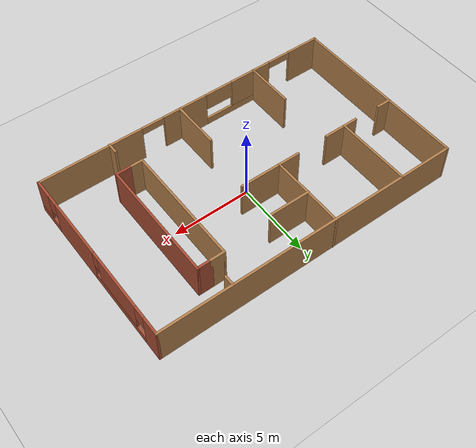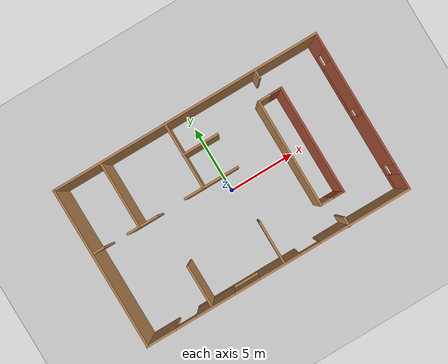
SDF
<sdf version="1.7">
 <world name="default">
  <light name="sun" type="directional">
   <pose>0 0 10 0 -0 0</pose>
   <diffuse>0.8 0.8 0.8 1</diffuse>
   <specular>0.2 0.2 0.2 1</specular>
   <attenuation>
    <range>1000</range>
    <constant>0.9</constant>
    <linear>0.01</linear>
    <quadratic>0.001</quadratic>
   </attenuation>
   <direction>-0.5 0.1 -0.9</direction>
   <spot><inner_angle>0</inner_angle><outer_angle>0</outer_angle><falloff>0</falloff></spot>
  </light>
  <model name="ground_plane">
   <static>1</static>
   <link name="link">
    <collision name="collision">
     <geometry><plane><normal>0 0 1</normal><size>100 100</size></plane></geometry>
     <surface><friction><ode><mu>100</mu><mu2>50</mu2></ode></friction></surface>
    </collision>
    <visual name="visual">
     <cast_shadows>0</cast_shadows>
     <geometry><plane><normal>0 0 1</normal><size>100 100</size></plane></geometry>
     <material>
      <script><uri>file://media/materials/scripts/gazebo.material</uri><name>Gazebo/Grey</name></script>
     </material>
    </visual>
   </link>
  </model>
  <gravity>0 0 -9.8</gravity>
  <magnetic_field>6e-06 2.3e-05 -4.2e-05</magnetic_field>
  <atmosphere type="adiabatic"/>
  <physics type="ode">
   <max_step_size>0.001</max_step_size>
   <real_time_factor>1</real_time_factor>
   <real_time_update_rate>1000</real_time_update_rate>
  </physics>
  <scene><ambient>0.4 0.4 0.4 1</ambient><background>0.7 0.7 0.7 1</background><shadows>1</shadows></scene>
  <audio><device>default</device></audio>
  <spherical_coordinates>
   <surface_model>EARTH_WGS84</surface_model>
   <latitude_deg>0</latitude_deg>
   <longitude_deg>0</longitude_deg>
   <elevation>0</elevation>
   <heading_deg>0</heading_deg>
  </spherical_coordinates>
  <model name="restaurant">
   <pose>0.00052 -2e-05 0 0 -0 0</pose>
   <link name="Wall_14">
    <pose>9.93178 -2.98994 0 0 -0 -1.56964</pose>
    <visual name="Wall_14_Visual_0">
     <pose>-0.989557 0 1.25 0 -0 0</pose>
     <geometry><box><size>3.98617 0.15 2.5</size></box></geometry>
     <material>
      <script><uri>file://media/materials/scripts/gazebo.material</uri><name>Gazebo/Bricks</name></script>
      <ambient>1 1 1 1</ambient>
     </material>
     <meta><layer>0</layer></meta>
    </visual>
    <collision name="Wall_14_Collision_0">
     <geometry><box><size>3.98617 0.15 2.5</size></box></geometry>
     <pose>-0.989557 0 1.25 0 -0 0</pose>
    </collision>
    <visual name="Wall_14_Visual_1">
     <pose>1.99308 0 0.25 0 -0 0</pose>
     <geometry><box><size>1.97911 0.15 0.5</size></box></geometry>
     <material>
      <script><uri>file://media/materials/scripts/gazebo.material</uri><name>Gazebo/Bricks</name></script>
      <ambient>1 1 1 1</ambient>
     </material>
     <meta><layer>0</layer></meta>
    </visual>
    <collision name="Wall_14_Collision_1">
     <geometry><box><size>1.97911 0.15 0.5</size></box></geometry>
     <pose>1.99308 0 0.25 0 -0 0</pose>
    </collision>
    <visual name="Wall_14_Visual_2">
     <pose>2.35186 0 1.5 0 -0 0</pose>
     <geometry><box><size>1.26156 0.15 2</size></box></geometry>
     <material>
      <script><uri>file://media/materials/scripts/gazebo.material</uri><name>Gazebo/Bricks</name></script>
      <ambient>1 1 1 1</ambient>
     </material>
     <meta><layer>0</layer></meta>
    </visual>
    <collision name="Wall_14_Collision_2">
     <geometry><box><size>1.26156 0.15 2</size></box></geometry>
     <pose>2.35186 0 1.5 0 -0 0</pose>
    </collision>
    <visual name="Wall_14_Visual_3">
     <pose>1.36231 0 1.9 0 -0 0</pose>
     <geometry><box><size>0.717555 0.15 1.2</size></box></geometry>
     <material>
      <script><uri>file://media/materials/scripts/gazebo.material</uri><name>Gazebo/Bricks</name></script>
      <ambient>1 1 1 1</ambient>
     </material>
     <meta><layer>0</layer></meta>
    </visual>
    <collision name="Wall_14_Collision_3">
     <geometry><box><size>0.717555 0.15 1.2</size></box></geometry>
     <pose>1.36231 0 1.9 0 -0 0</pose>
    </collision>
   </link>
   <link name="Wall_15">
    <pose>-0.010231 -5.89748 0 0 -0 3.14159</pose>
    <visual name="Wall_15_Visual_0">
     <pose>-6.59523 0 1.25 0 -0 0</pose>
     <geometry><box><size>6.80954 0.15 2.5</size></box></geometry>
     <material>
      <script><uri>file://media/materials/scripts/gazebo.material</uri><name>Gazebo/Wood</name></script>
      <ambient>1 1 1 1</ambient>
     </material>
     <meta><layer>0</layer></meta>
    </visual>
    <collision name="Wall_15_Collision_0">
     <geometry><box><size>6.80954 0.15 2.5</size></box></geometry>
     <pose>-6.59523 0 1.25 0 -0 0</pose>
    </collision>
    <visual name="Wall_15_Visual_1">
     <pose>-0.152511 0 1.25 0 -0 0</pose>
     <geometry><box><size>3.07169 0.15 2.5</size></box></geometry>
     <material>
      <script><uri>file://media/materials/scripts/gazebo.material</uri><name>Gazebo/Wood</name></script>
      <ambient>1 1 1 1</ambient>
     </material>
     <meta><layer>0</layer></meta>
    </visual>
    <collision name="Wall_15_Collision_1">
     <geometry><box><size>3.07169 0.15 2.5</size></box></geometry>
     <pose>-0.152511 0 1.25 0 -0 0</pose>
    </collision>
    <visual name="Wall_15_Visual_2">
     <pose>8.87248 0 1.25 0 -0 0</pose>
     <geometry><box><size>2.25504 0.15 2.5</size></box></geometry>
     <material>
      <script><uri>file://media/materials/scripts/gazebo.material</uri><name>Gazebo/Wood</name></script>
      <ambient>1 1 1 1</ambient>
     </material>
     <meta><layer>0</layer></meta>
    </visual>
    <collision name="Wall_15_Collision_2">
     <geometry><box><size>2.25504 0.15 2.5</size></box></geometry>
     <pose>8.87248 0 1.25 0 -0 0</pose>
    </collision>
    <visual name="Wall_15_Visual_3">
     <pose>3.7864 0 0.25 0 -0 0</pose>
     <geometry><box><size>4.80612 0.15 0.5</size></box></geometry>
     <material>
      <script><uri>file://media/materials/scripts/gazebo.material</uri><name>Gazebo/Wood</name></script>
      <ambient>1 1 1 1</ambient>
     </material>
     <meta><layer>0</layer></meta>
    </visual>
    <collision name="Wall_15_Collision_3">
     <geometry><box><size>4.80612 0.15 0.5</size></box></geometry>
     <pose>3.7864 0 0.25 0 -0 0</pose>
    </collision>
    <visual name="Wall_15_Visual_4">
     <pose>4.72994 0 1.5 0 -0 0</pose>
     <geometry><box><size>2.91902 0.15 2</size></box></geometry>
     <material>
      <script><uri>file://media/materials/scripts/gazebo.material</uri><name>Gazebo/Wood</name></script>
      <ambient>1 1 1 1</ambient>
     </material>
     <meta><layer>0</layer></meta>
    </visual>
    <collision name="Wall_15_Collision_4">
     <geometry><box><size>2.91902 0.15 2</size></box></geometry>
     <pose>4.72994 0 1.5 0 -0 0</pose>
    </collision>
    <visual name="Wall_15_Visual_5">
     <pose>2.32688 0 1.9 0 -0 0</pose>
     <geometry><box><size>1.88709 0.15 1.2</size></box></geometry>
     <material>
      <script><uri>file://media/materials/scripts/gazebo.material</uri><name>Gazebo/Wood</name></script>
      <ambient>1 1 1 1</ambient>
     </material>
     <meta><layer>0</layer></meta>
    </visual>
    <collision name="Wall_15_Collision_5">
     <geometry><box><size>1.88709 0.15 1.2</size></box></geometry>
     <pose>2.32688 0 1.9 0 -0 0</pose>
    </collision>
    <visual name="Wall_15_Visual_6">
     <pose>-2.43941 0 2.25 0 -0 0</pose>
     <geometry><box><size>1.5021 0.15 0.5</size></box></geometry>
     <material>
      <script><uri>file://media/materials/scripts/gazebo.material</uri><name>Gazebo/Wood</name></script>
      <ambient>1 1 1 1</ambient>
     </material>
     <meta><layer>0</layer></meta>
    </visual>
    <collision name="Wall_15_Collision_6">
     <geometry><box><size>1.5021 0.15 0.5</size></box></geometry>
     <pose>-2.43941 0 2.25 0 -0 0</pose>
    </collision>
    <visual name="Wall_15_Visual_7">
     <pose>6.9672 0 2.25 0 -0 0</pose>
     <geometry><box><size>1.5555 0.15 0.5</size></box></geometry>
     <material>
      <script><uri>file://media/materials/scripts/gazebo.material</uri><name>Gazebo/Wood</name></script>
      <ambient>1 1 1 1</ambient>
     </material>
     <meta><layer>0</layer></meta>
    </visual>
    <collision name="Wall_15_Collision_7">
     <geometry><box><size>1.5555 0.15 0.5</size></box></geometry>
     <pose>6.9672 0 2.25 0 -0 0</pose>
    </collision>
   </link>
   <link name="Wall_16">
    <collision name="Wall_16_Collision">
     <geometry><box><size>11.9652 0.15 2.5</size></box></geometry>
     <pose>0 0 1.25 0 -0 0</pose>
    </collision>
    <visual name="Wall_16_Visual">
     <pose>0 0 1.25 0 -0 0</pose>
     <geometry><box><size>11.9652 0.15 2.5</size></box></geometry>
     <material>
      <script><uri>file://media/materials/scripts/gazebo.material</uri><name>Gazebo/Wood</name></script>
      <ambient>1 1 1 1</ambient>
     </material>
     <meta><layer>0</layer></meta>
    </visual>
    <pose>-9.91822 0.010065 0 0 -0 1.57137</pose>
   </link>
   <link name="Wall_17">
    <collision name="Wall_17_Collision">
     <geometry><box><size>20 0.15 2.5</size></box></geometry>
     <pose>0 0 1.25 0 -0 0</pose>
    </collision>
    <visual name="Wall_17_Visual">
     <pose>0 0 1.25 0 -0 0</pose>
     <geometry><box><size>20 0.15 2.5</size></box></geometry>
     <material>
      <script><uri>file://media/materials/scripts/gazebo.material</uri><name>Gazebo/Wood</name></script>
      <ambient>1 1 1 1</ambient>
     </material>
     <meta><layer>0</layer></meta>
    </visual>
    <pose>0.003408 5.91761 0 0 -0 0</pose>
   </link>
   <link name="Wall_18">
    <pose>9.92841 2.91761 0 0 -0 -1.5708</pose>
    <visual name="Wall_18_Visual_0">
     <pose>-2.47664 0 1.25 0 -0 0</pose>
     <geometry><box><size>1.19672 0.15 2.5</size></box></geometry>
     <material>
      <script><uri>file://media/materials/scripts/gazebo.material</uri><name>Gazebo/Bricks</name></script>
      <ambient>1 1 1 1</ambient>
     </material>
     <meta><layer>0</layer></meta>
    </visual>
    <collision name="Wall_18_Collision_0">
     <geometry><box><size>1.19672 0.15 2.5</size></box></geometry>
     <pose>-2.47664 0 1.25 0 -0 0</pose>
    </collision>
    <visual name="Wall_18_Visual_1">
     <pose>0.59836 0 0.25 0 -0 0</pose>
     <geometry><box><size>4.95328 0.15 0.5</size></box></geometry>
     <material>
      <script><uri>file://media/materials/scripts/gazebo.material</uri><name>Gazebo/Bricks</name></script>
      <ambient>1 1 1 1</ambient>
     </material>
     <meta><layer>0</layer></meta>
    </visual>
    <collision name="Wall_18_Collision_1">
     <geometry><box><size>4.95328 0.15 0.5</size></box></geometry>
     <pose>0.59836 0 0.25 0 -0 0</pose>
    </collision>
    <visual name="Wall_18_Visual_2">
     <pose>0.693485 0 1.5 0 -0 0</pose>
     <geometry><box><size>3.54353 0.15 2</size></box></geometry>
     <material>
      <script><uri>file://media/materials/scripts/gazebo.material</uri><name>Gazebo/Bricks</name></script>
      <ambient>1 1 1 1</ambient>
     </material>
     <meta><layer>0</layer></meta>
    </visual>
    <collision name="Wall_18_Collision_2">
     <geometry><box><size>3.54353 0.15 2</size></box></geometry>
     <pose>0.693485 0 1.5 0 -0 0</pose>
    </collision>
    <visual name="Wall_18_Visual_3">
     <pose>0.693485 0 1.5 0 -0 0</pose>
     <geometry><box><size>3.54353 0.15 2</size></box></geometry>
     <material>
      <script><uri>file://media/materials/scripts/gazebo.material</uri><name>Gazebo/Bricks</name></script>
      <ambient>1 1 1 1</ambient>
     </material>
     <meta><layer>0</layer></meta>
    </visual>
    <collision name="Wall_18_Collision_3">
     <geometry><box><size>3.54353 0.15 2</size></box></geometry>
     <pose>0.693485 0 1.5 0 -0 0</pose>
    </collision>
    <visual name="Wall_18_Visual_4">
     <pose>-1.47828 0 1.9 0 -0 0</pose>
     <geometry><box><size>0.8 0.15 1.2</size></box></geometry>
     <material>
      <script><uri>file://media/materials/scripts/gazebo.material</uri><name>Gazebo/Bricks</name></script>
      <ambient>1 1 1 1</ambient>
     </material>
     <meta><layer>0</layer></meta>
    </visual>
    <collision name="Wall_18_Collision_4">
     <geometry><box><size>0.8 0.15 1.2</size></box></geometry>
     <pose>-1.47828 0 1.9 0 -0 0</pose>
    </collision>
    <visual name="Wall_18_Visual_5">
     <pose>2.77013 0 1.9 0 -0 0</pose>
     <geometry><box><size>0.60975 0.15 1.2</size></box></geometry>
     <material>
      <script><uri>file://media/materials/scripts/gazebo.material</uri><name>Gazebo/Bricks</name></script>
      <ambient>1 1 1 1</ambient>
     </material>
     <meta><layer>0</layer></meta>
    </visual>
    <collision name="Wall_18_Collision_5">
     <geometry><box><size>0.60975 0.15 1.2</size></box></geometry>
     <pose>2.77013 0 1.9 0 -0 0</pose>
    </collision>
    <visual name="Wall_18_Visual_6">
     <pose>2.77013 0 1.9 0 -0 0</pose>
     <geometry><box><size>0.60975 0.15 1.2</size></box></geometry>
     <material>
      <script><uri>file://media/materials/scripts/gazebo.material</uri><name>Gazebo/Bricks</name></script>
      <ambient>1 1 1 1</ambient>
     </material>
     <meta><layer>0</layer></meta>
    </visual>
    <collision name="Wall_18_Collision_6">
     <geometry><box><size>0.60975 0.15 1.2</size></box></geometry>
     <pose>2.77013 0 1.9 0 -0 0</pose>
    </collision>
   </link>
   <link name="Wall_22">
    <collision name="Wall_22_Collision">
     <geometry><box><size>0.75 0.15 2.5</size></box></geometry>
     <pose>0 0 1.25 0 -0 0</pose>
    </collision>
    <visual name="Wall_22_Visual">
     <pose>0 0 1.25 0 -0 0</pose>
     <geometry><box><size>0.75 0.15 2.5</size></box></geometry>
     <material>
      <script><uri>file://media/materials/scripts/gazebo.material</uri><name>Gazebo/Wood</name></script>
      <ambient>1 1 1 1</ambient>
     </material>
     <meta><layer>0</layer></meta>
    </visual>
    <pose>5.35251 -5.63541 0 0 -0 1.5708</pose>
   </link>
   <link name="Wall_24">
    <collision name="Wall_24_Collision">
     <geometry><box><size>0.75 0.15 2.5</size></box></geometry>
     <pose>0 0 1.25 0 -0 0</pose>
    </collision>
    <visual name="Wall_24_Visual">
     <pose>0 0 1.25 0 -0 0</pose>
     <geometry><box><size>0.75 0.15 2.5</size></box></geometry>
     <material>
      <script><uri>file://media/materials/scripts/gazebo.material</uri><name>Gazebo/Wood</name></script>
      <ambient>1 1 1 1</ambient>
     </material>
     <meta><layer>0</layer></meta>
    </visual>
    <pose>5.31682 5.61552 0 0 -0 -1.5708</pose>
   </link>
   <link name="Wall_26">
    <collision name="Wall_26_Collision">
     <geometry><box><size>5 0.15 2.5</size></box></geometry>
     <pose>0 0 1.25 0 -0 0</pose>
    </collision>
    <visual name="Wall_26_Visual">
     <pose>0 0 1.25 0 -0 0</pose>
     <geometry><box><size>5 0.15 2.5</size></box></geometry>
     <material>
      <script><uri>file://media/materials/scripts/gazebo.material</uri><name>Gazebo/Wood</name></script>
      <ambient>1 1 1 1</ambient>
     </material>
     <meta><layer>0</layer></meta>
    </visual>
    <pose>-6.3931 3.4684 0 0 -0 -1.5708</pose>
   </link>
   <link name="Wall_30">
    <collision name="Wall_30_Collision">
     <geometry><box><size>1 0.15 2.5</size></box></geometry>
     <pose>0 0 1.25 0 -0 0</pose>
    </collision>
    <visual name="Wall_30_Visual">
     <pose>0 0 1.25 0 -0 0</pose>
     <geometry><box><size>1 0.15 2.5</size></box></geometry>
     <material>
      <script><uri>file://media/materials/scripts/gazebo.material</uri><name>Gazebo/Wood</name></script>
      <ambient>1 1 1 1</ambient>
     </material>
     <meta><layer>0</layer></meta>
    </visual>
    <pose>-6.8181 1.0434 0 0 -0 3.14159</pose>
   </link>
   <link name="Wall_34">
    <collision name="Wall_34_Collision">
     <geometry><box><size>1 0.15 2.5</size></box></geometry>
     <pose>0 0 1.25 0 -0 0</pose>
    </collision>
    <visual name="Wall_34_Visual">
     <pose>0 0 1.25 0 -0 0</pose>
     <geometry><box><size>1 0.15 2.5</size></box></geometry>
     <material>
      <script><uri>file://media/materials/scripts/gazebo.material</uri><name>Gazebo/Wood</name></script>
      <ambient>1 1 1 1</ambient>
     </material>
     <meta><layer>0</layer></meta>
    </visual>
    <pose>-9.49428 1.08722 0 0 -0 0</pose>
   </link>
   <link name="Wall_39">
    <collision name="Wall_39_Collision">
     <geometry><box><size>5 0.15 2.5</size></box></geometry>
     <pose>0 0 1.25 0 -0 0</pose>
    </collision>
    <visual name="Wall_39_Visual">
     <pose>0 0 1.25 0 -0 0</pose>
     <geometry><box><size>5 0.15 2.5</size></box></geometry>
     <material>
      <script><uri>file://media/materials/scripts/gazebo.material</uri><name>Gazebo/Wood</name></script>
      <ambient>1 1 1 1</ambient>
     </material>
     <meta><layer>0</layer></meta>
    </visual>
    <pose>-1.50748 3.51041 0 0 -0 -1.5708</pose>
   </link>
   <link name="Wall_40">
    <collision name="Wall_40_Collision">
     <geometry><box><size>1.5 0.15 2.5</size></box></geometry>
     <pose>0 0 1.25 0 -0 0</pose>
    </collision>
    <visual name="Wall_40_Visual">
     <pose>0 0 1.25 0 -0 0</pose>
     <geometry><box><size>1.5 0.15 2.5</size></box></geometry>
     <material>
      <script><uri>file://media/materials/scripts/gazebo.material</uri><name>Gazebo/Wood</name></script>
      <ambient>1 1 1 1</ambient>
     </material>
     <meta><layer>0</layer></meta>
    </visual>
    <pose>-2.18248 1.0854 0 0 -0 3.14159</pose>
   </link>
   <link name="Wall_42">
    <collision name="Wall_42_Collision">
     <geometry><box><size>1.5 0.15 2.5</size></box></geometry>
     <pose>0 0 1.25 0 -0 0</pose>
    </collision>
    <visual name="Wall_42_Visual">
     <pose>0 0 1.25 0 -0 0</pose>
     <geometry><box><size>1.5 0.15 2.5</size></box></geometry>
     <material>
      <script><uri>file://media/materials/scripts/gazebo.material</uri><name>Gazebo/Wood</name></script>
      <ambient>1 1 1 1</ambient>
     </material>
     <meta><layer>0</layer></meta>
    </visual>
    <pose>-5.7181 1.0434 0 0 -0 0</pose>
   </link>
   <link name="Wall_46">
    <collision name="Wall_46_Collision">
     <geometry><box><size>3.25 0.15 2.5</size></box></geometry>
     <pose>0 0 1.25 0 -0 0</pose>
    </collision>
    <visual name="Wall_46_Visual">
     <pose>0 0 1.25 0 -0 0</pose>
     <geometry><box><size>3.25 0.15 2.5</size></box></geometry>
     <material>
      <script><uri>file://media/materials/scripts/gazebo.material</uri><name>Gazebo/Wood</name></script>
      <ambient>1 1 1 1</ambient>
     </material>
     <meta><layer>0</layer></meta>
    </visual>
    <pose>-5.0066 -4.35047 0 0 -0 1.5708</pose>
   </link>
   <link name="Wall_48">
    <collision name="Wall_48_Collision">
     <geometry><box><size>3.25 0.15 2.5</size></box></geometry>
     <pose>0 0 1.25 0 -0 0</pose>
    </collision>
    <visual name="Wall_48_Visual">
     <pose>0 0 1.25 0 -0 0</pose>
     <geometry><box><size>3.25 0.15 2.5</size></box></geometry>
     <material>
      <script><uri>file://media/materials/scripts/gazebo.material</uri><name>Gazebo/Wood</name></script>
      <ambient>1 1 1 1</ambient>
     </material>
     <meta><layer>0</layer></meta>
    </visual>
    <pose>0.491486 -4.33151 0 0 -0 1.5708</pose>
   </link>
   <link name="Wall_55">
    <collision name="Wall_55_Collision">
     <geometry><box><size>1 0.15 2.5</size></box></geometry>
     <pose>0 0 1.25 0 -0 0</pose>
    </collision>
    <visual name="Wall_55_Visual">
     <pose>0 0 1.25 0 -0 0</pose>
     <geometry><box><size>1 0.15 2.5</size></box></geometry>
     <material>
      <script><uri>file://media/materials/scripts/gazebo.material</uri><name>Gazebo/Wood</name></script>
      <ambient>1 1 1 1</ambient>
     </material>
     <meta><layer>0</layer></meta>
    </visual>
    <pose>4.9079 4.0236 0 0 -0 3.14159</pose>
   </link>
   <link name="Wall_56">
    <collision name="Wall_56_Collision">
     <geometry><box><size>8 0.15 2.5</size></box></geometry>
     <pose>0 0 1.25 0 -0 0</pose>
    </collision>
    <visual name="Wall_56_Visual">
     <pose>0 0 1.25 0 -0 0</pose>
     <geometry><box><size>8 0.15 2.5</size></box></geometry>
     <material>
      <script><uri>file://media/materials/scripts/gazebo.material</uri><name>Gazebo/Wood</name></script>
      <ambient>1 1 1 1</ambient>
     </material>
     <meta><layer>0</layer></meta>
    </visual>
    <pose>4.4829 0.098601 0 0 -0 -1.5708</pose>
   </link>
   <link name="Wall_59">
    <collision name="Wall_59_Collision">
     <geometry><box><size>1 0.15 2.5</size></box></geometry>
     <pose>0 0 1.25 0 -0 0</pose>
    </collision>
    <visual name="Wall_59_Visual">
     <pose>0 0 1.25 0 -0 0</pose>
     <geometry><box><size>1 0.15 2.5</size></box></geometry>
     <material>
      <script><uri>file://media/materials/scripts/gazebo.material</uri><name>Gazebo/Wood</name></script>
      <ambient>1 1 1 1</ambient>
     </material>
     <meta><layer>0</layer></meta>
    </visual>
    <pose>4.9079 -3.8264 0 0 -0 0</pose>
   </link>
   <link name="Wall_61">
    <collision name="Wall_61_Collision">
     <geometry><box><size>1 0.15 2.5</size></box></geometry>
     <pose>0 0 1.25 0 -0 0</pose>
    </collision>
    <visual name="Wall_61_Visual">
     <pose>0 0 1.25 0 -0 0</pose>
     <geometry><box><size>1 0.15 2.5</size></box></geometry>
     <material>
      <script><uri>file://media/materials/scripts/gazebo.material</uri><name>Gazebo/Bricks</name></script>
      <ambient>1 1 1 1</ambient>
     </material>
     <meta><layer>0</layer></meta>
    </visual>
    <pose>5.7579 4.0236 0 0 -0 0</pose>
   </link>
   <link name="Wall_62">
    <collision name="Wall_62_Collision">
     <geometry><box><size>8 0.15 2.5</size></box></geometry>
     <pose>0 0 1.25 0 -0 0</pose>
    </collision>
    <visual name="Wall_62_Visual">
     <pose>0 0 1.25 0 -0 0</pose>
     <geometry><box><size>8 0.15 2.5</size></box></geometry>
     <material>
      <script><uri>file://media/materials/scripts/gazebo.material</uri><name>Gazebo/Bricks</name></script>
      <ambient>1 1 1 1</ambient>
     </material>
     <meta><layer>0</layer></meta>
    </visual>
    <pose>6.1829 0.098601 0 0 -0 -1.5708</pose>
   </link>
   <link name="Wall_63">
    <collision name="Wall_63_Collision">
     <geometry><box><size>1 0.15 2.5</size></box></geometry>
     <pose>0 0 1.25 0 -0 0</pose>
    </collision>
    <visual name="Wall_63_Visual">
     <pose>0 0 1.25 0 -0 0</pose>
     <geometry><box><size>1 0.15 2.5</size></box></geometry>
     <material>
      <script><uri>file://media/materials/scripts/gazebo.material</uri><name>Gazebo/Bricks</name></script>
      <ambient>1 1 1 1</ambient>
     </material>
     <meta><layer>0</layer></meta>
    </visual>
    <pose>5.7579 -3.8264 0 0 -0 3.14159</pose>
   </link>
   <link name="Wall_65">
    <collision name="Wall_65_Collision">
     <geometry><box><size>2.75 0.15 2.5</size></box></geometry>
     <pose>0 0 1.25 0 -0 0</pose>
    </collision>
    <visual name="Wall_65_Visual">
     <pose>0 0 1.25 0 -0 0</pose>
     <geometry><box><size>2.75 0.15 2.5</size></box></geometry>
     <material>
      <script><uri>file://media/materials/scripts/gazebo.material</uri><name>Gazebo/Wood</name></script>
      <ambient>1 1 1 1</ambient>
     </material>
     <meta><layer>0</layer></meta>
    </visual>
    <pose>-0.20748 1.0854 0 0 -0 0</pose>
   </link>
   <link name="Wall_67">
    <collision name="Wall_67_Collision">
     <geometry><box><size>2.75 0.15 2.5</size></box></geometry>
     <pose>0 0 1.25 0 -0 0</pose>
    </collision>
    <visual name="Wall_67_Visual">
     <pose>0 0 1.25 0 -0 0</pose>
     <geometry><box><size>2.75 0.15 2.5</size></box></geometry>
     <material>
      <script><uri>file://media/materials/scripts/gazebo.material</uri><name>Gazebo/Wood</name></script>
      <ambient>1 1 1 1</ambient>
     </material>
     <meta><layer>0</layer></meta>
    </visual>
    <pose>-0.229172 3.59219 0 0 -0 0</pose>
   </link>
   <static>1</static>
  </model>
  <light name="user_directional_light_0" type="directional">
   <pose>0.047596 2.42694 1 0 -0 0</pose>
   <diffuse>0.5 0.5 0.5 1</diffuse>
   <specular>0.1 0.1 0.1 1</specular>
   <direction>0.1 0.1 -0.9</direction>
   <attenuation>
    <range>20</range>
    <constant>0.5</constant>
    <linear>0.01</linear>
    <quadratic>0.001</quadratic>
   </attenuation>
  </light>
  <light name="user_directional_light_1" type="directional">
   <pose>-2.28531 -2.92123 1 0 -0 0</pose>
   <diffuse>0.5 0.5 0.5 1</diffuse>
   <specular>0.1 0.1 0.1 1</specular>
   <direction>0.1 0.1 -0.9</direction>
   <attenuation>
    <range>20</range>
    <constant>0.5</constant>
    <linear>0.01</linear>
    <quadratic>0.001</quadratic>
   </attenuation>
  </light>
  <light name="user_directional_light_2" type="directional">
   <pose>-7.7253 -4.69306 1 0 -0 0</pose>
   <diffuse>0.5 0.5 0.5 1</diffuse>
   <specular>0.1 0.1 0.1 1</specular>
   <direction>0.1 0.1 -0.9</direction>
   <attenuation>
    <range>20</range>
    <constant>0.5</constant>
    <linear>0.01</linear>
    <quadratic>0.001</quadratic>
   </attenuation>
  </light>
  <light name="user_directional_light_4" type="directional">
   <pose>-6.8267 -4.52141 1 0 -0 0</pose>
   <diffuse>0.5 0.5 0.5 1</diffuse>
   <specular>0.1 0.1 0.1 1</specular>
   <direction>0.1 0.1 -0.9</direction>
   <attenuation>
    <range>20</range>
    <constant>0.5</constant>
    <linear>0.01</linear>
    <quadratic>0.001</quadratic>
   </attenuation>
  </light>
 </world>
</sdf>
